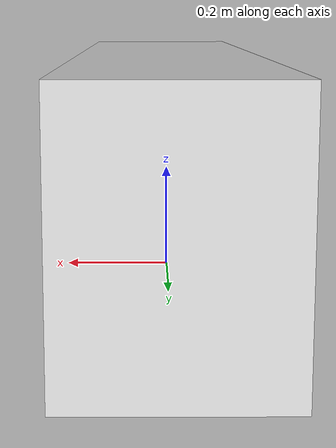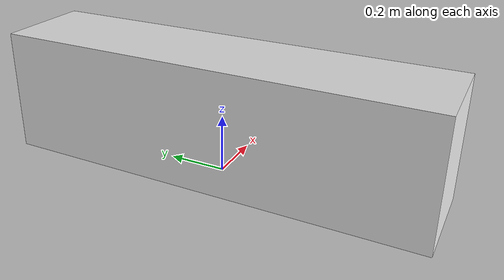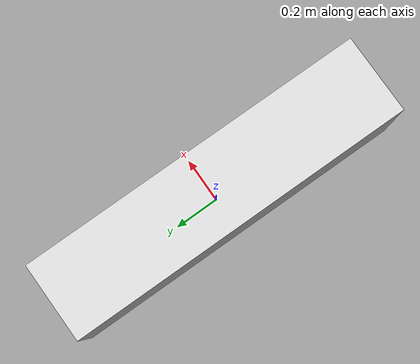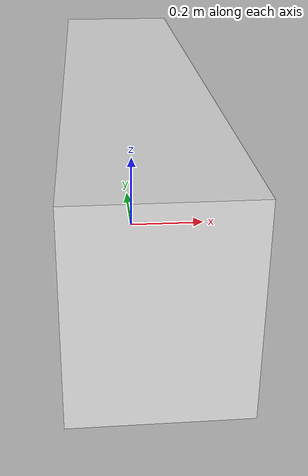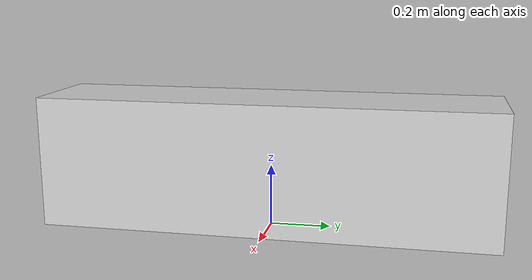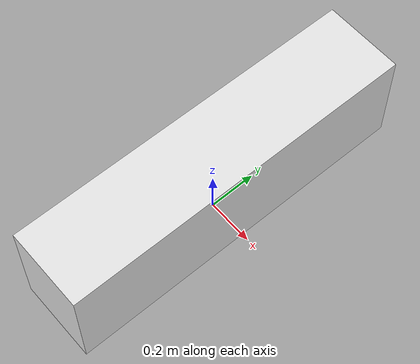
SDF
<?xml version="1.0"?>
<sdf version="1.6">
  <model name="rwc2015/bar">
    <link name="1_link">
      <collision name="1_col">
        <geometry>
          <box>
            <size>0.34 1.49 0.43</size>
          </box>
        </geometry>
      </collision>
      <visual name="1_vis">
        <geometry>
          <box>
            <size>0.34 1.49 0.43</size>
          </box>
        </geometry>
        <material>
          <ambient>0.9 0.9 0.9 1</ambient>
        </material>
      </visual>
      <pose>0.0 0.0 0.215 0 0 0</pose>
    </link>
    <link name="in_front_of">
      <virtual_volume name="in_front_of_vv">
        <geometry>
          <box>
            <size>0.8 0.3 1</size>
          </box>
        </geometry>
        <pose>-0.6 0.0 0.5 0 0 0</pose>
      </virtual_volume>
    </link>
    <static>true</static>
  </model>
</sdf>
